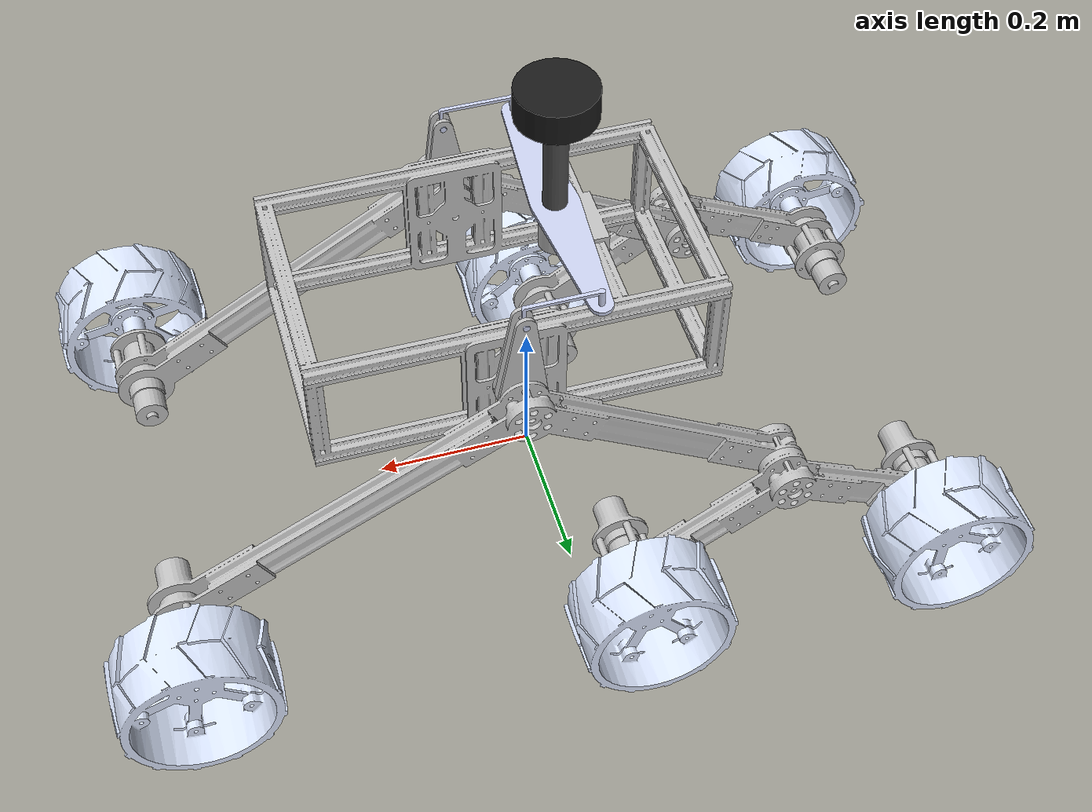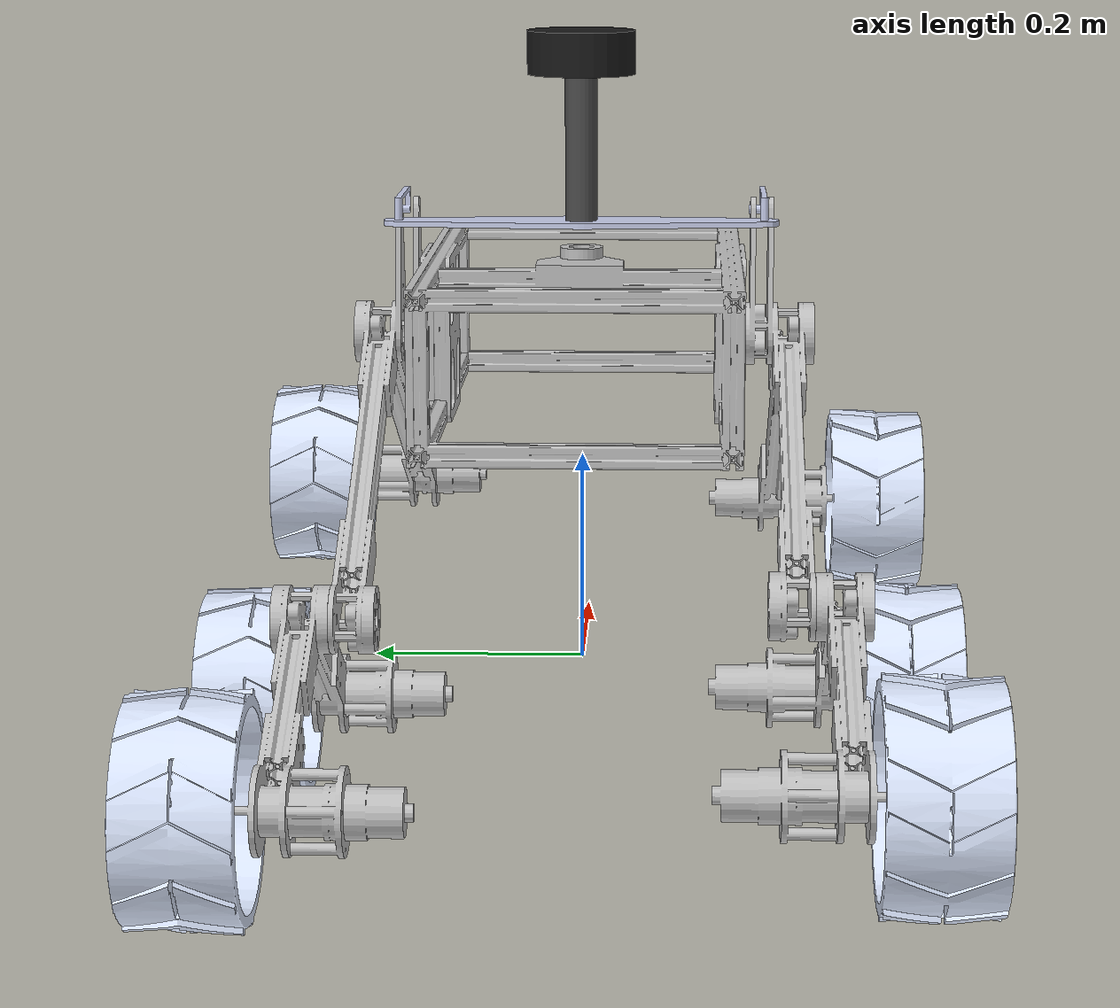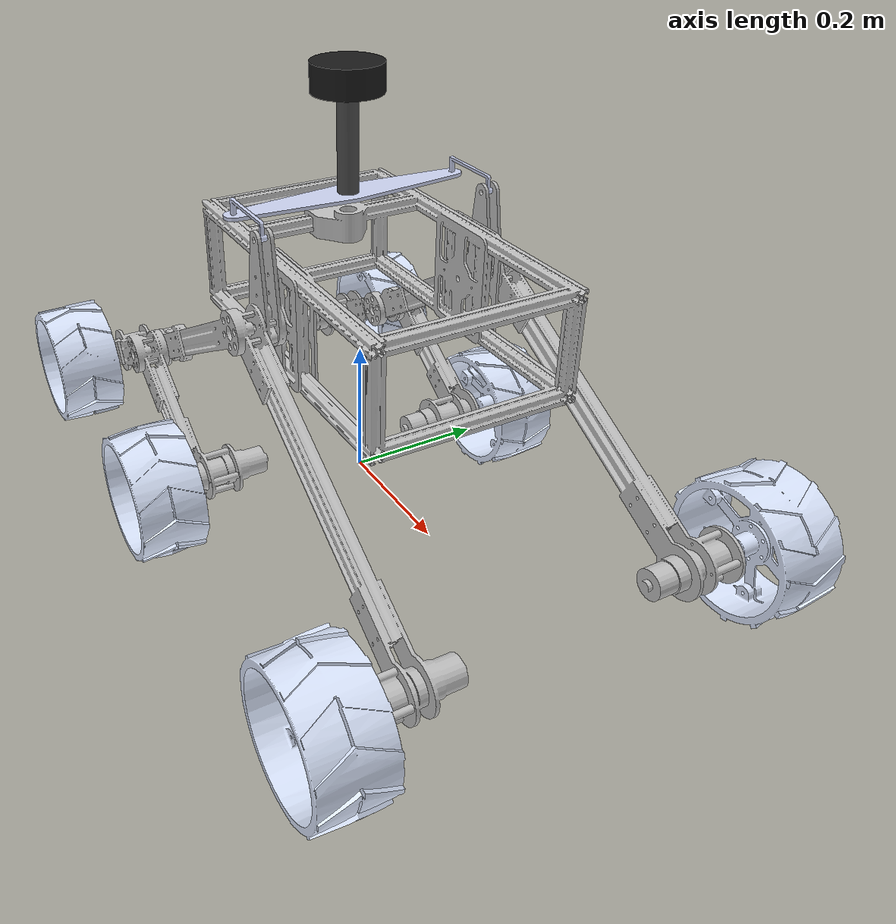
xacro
<?xml version="1.0"?>
<robot
  name="rover_description"
  xmlns:xacro="http://www.ros.org/wiki/xacro">
  <xacro:include filename="$(find rover_description)/urdf/sensors.urdf.xacro"/>

  <!-- Standard ROS base_link root frame (REP-103: X forward, Y left, Z up) -->
  <link name="base_link" />

  <joint name="base_link_to_chassis_joint" type="fixed">
    <parent link="base_link" />
    <child link="chassis" />
    <origin xyz="-0.9725 0.8488 -1.09" rpy="-1.570796 0 -1.570796" />
  </joint>

  <link
    name="chassis">
    <inertial>
      <origin
        xyz="0.848856756174826 -1.40233565202935 1.01936314005979"
        rpy="0 0 0" />
      <mass
        value="3.0136708748555" />
      <inertia
        ixx="0.0238693285858421"
        ixy="-2.16162888765699E-10"
        ixz="2.16817247419927E-10"
        iyy="0.0215591824716579"
        iyz="-3.67475478322892E-06"
        izz="0.00486414098649309" />
    </inertial>
    <visual>
      <origin
        xyz="0 0 0"
        rpy="0 0 0" />
      <geometry>
        <mesh
          filename="package://rover_description/meshes/chassis.STL" />
      </geometry>
      <material
        name="silver">
        <color
          rgba="0.752941176470588 0.752941176470588 0.752941176470588 1" />
      </material>
    </visual>
    <collision>
      <origin
        xyz="0 0 0"
        rpy="0 0 0" />
      <geometry>
        <mesh
          filename="package://rover_description/meshes/chassis.STL" />
      </geometry>
    </collision>
  </link>
  <link
    name="rocker_left">
    <inertial>
      <origin
        xyz="-0.0708930506950052 -0.0788266039661663 -0.0854282503053444"
        rpy="0 0 0" />
      <mass
        value="1.52406781035048" />
      <inertia
        ixx="0.00276301924130709"
        ixy="-0.00103485933820542"
        ixz="3.88201944670203E-08"
        iyy="0.00511203836891508"
        iyz="-2.72150249215459E-08"
        izz="0.00741443107639246" />
    </inertial>
    <visual>
      <origin
        xyz="0 0 0"
        rpy="0 0 0" />
      <geometry>
        <mesh
          filename="package://rover_description/meshes/rocker_left.STL" />
      </geometry>
      <material
        name="silver">
        <color
          rgba="0.752941176470588 0.752941176470588 0.752941176470588 1" />
      </material>
    </visual>
    <collision>
      <origin
        xyz="0 0 0"
        rpy="0 0 0" />
      <geometry>
        <mesh
          filename="package://rover_description/meshes/rocker_left.STL" />
      </geometry>
    </collision>
  </link>
  <joint
    name="rocker_to_chassis_left_joint"
    type="revolute">
    <origin
      xyz="0.57581 -1.3985 1.0289"
      rpy="-1.5708 1.5427 1.5708" />
    <parent
      link="chassis" />
    <child
      link="rocker_left" />
    <axis
      xyz="0 0 1" />
    <limit lower="-0.4" upper="0.4" effort="100.0" velocity="1.0" />
    <dynamics damping="8.0" friction="0.5" />
  </joint>
  <link
    name="front_wheel_left">
    <inertial>
      <origin
        xyz="1.74505466299379E-07 -2.98567551570983E-07 -0.0357217157995743"
        rpy="0 0 0" />
      <mass
        value="0.698737792866946" />
      <inertia
        ixx="0.0027783274087875"
        ixy="4.08012165720173E-13"
        ixz="2.071363176278E-18"
        iyy="0.00277832741148056"
        iyz="2.91236690295353E-18"
        izz="0.0052809365873556" />
    </inertial>
    <visual>
      <origin
        xyz="0 0 0"
        rpy="0 0 0" />
      <geometry>
        <mesh
          filename="package://rover_description/meshes/front_wheel_left.STL" />
      </geometry>
      <material
        name="light_blue">
        <color
          rgba="0.866666666666667 0.909803921568627 1 1" />
      </material>
    </visual>
    <collision>
      <origin
        xyz="0 0 0"
        rpy="0 0 0" />
      <geometry>
        <mesh
          filename="package://rover_description/meshes/front_wheel_left.STL" />
      </geometry>
    </collision>
  </link>
  <joint
    name="front_wheel_to_rocker_left_joint"
    type="continuous">
    <origin
      xyz="-0.42714 -0.24661 0"
      rpy="3.1416 0 -1.7013" />
    <parent
      link="rocker_left" />
    <child
      link="front_wheel_left" />
    <axis
      xyz="0 0 1" />
  </joint>
  <link
    name="bogie_left">
    <inertial>
      <origin
        xyz="0.036618282465839 -0.0737630682136117 -0.0541227088672851"
        rpy="0 0 0" />
      <mass
        value="0.879768518113954" />
      <inertia
        ixx="0.000807077266052394"
        ixy="-0.000166971431752085"
        ixz="2.93085100014238E-08"
        iyy="0.00105420731413558"
        iyz="-6.37598853947825E-08"
        izz="0.00101921636974668" />
    </inertial>
    <visual>
      <origin
        xyz="0 0 0"
        rpy="0 0 0" />
      <geometry>
        <mesh
          filename="package://rover_description/meshes/bogie_left.STL" />
      </geometry>
      <material
        name="silver">
        <color
          rgba="0.752941176470588 0.752941176470588 0.752941176470588 1" />
      </material>
    </visual>
    <collision>
      <origin
        xyz="0 0 0"
        rpy="0 0 0" />
      <geometry>
        <mesh
          filename="package://rover_description/meshes/bogie_left.STL" />
      </geometry>
    </collision>
  </link>
  <joint
    name="bogie_to_rocker_left_joint"
    type="revolute">
    <origin
      xyz="0.33299 -0.19225 -0.005"
      rpy="0 0 -0.39451" />
    <parent
      link="rocker_left" />
    <child
      link="bogie_left" />
    <axis
      xyz="0 0 1" />
    <limit lower="-0.4" upper="0.4" effort="100.0" velocity="1.0" />
    <dynamics damping="5.0" friction="0.5" />
  </joint>
  <link
    name="middle_wheel_left">
    <inertial>
      <origin
        xyz="1.74504439676149E-07 -2.9856884609103E-07 -0.0357217157995328"
        rpy="0 0 0" />
      <mass
        value="0.698737792866942" />
      <inertia
        ixx="0.00277832740878752"
        ixy="4.08022357220594E-13"
        ixz="-4.39944130320653E-18"
        iyy="0.00277832741148053"
        iyz="-2.42819306211826E-19"
        izz="0.00528093658735559" />
    </inertial>
    <visual>
      <origin
        xyz="0 0 0"
        rpy="0 0 0" />
      <geometry>
        <mesh
          filename="package://rover_description/meshes/middle_wheel_left.STL" />
      </geometry>
      <material
        name="light_blue">
        <color
          rgba="0.866666666666667 0.909803921568627 1 1" />
      </material>
    </visual>
    <collision>
      <origin
        xyz="0 0 0"
        rpy="0 0 0" />
      <geometry>
        <mesh
          filename="package://rover_description/meshes/middle_wheel_left.STL" />
      </geometry>
    </collision>
  </link>
  <joint
    name="middle_wheel_left_joint"
    type="continuous">
    <origin
      xyz="-0.12787 -0.19503 0"
      rpy="3.1416 0 0.59613" />
    <parent
      link="bogie_left" />
    <child
      link="middle_wheel_left" />
    <axis
      xyz="0 0 1" />
  </joint>
  <link
    name="back_wheel_left">
    <inertial>
      <origin
        xyz="1.74504817262999E-07 -2.98566775858156E-07 -0.0357217157995454"
        rpy="0 0 0" />
      <mass
        value="0.698737792866945" />
      <inertia
        ixx="0.00277832740878753"
        ixy="4.08019409545938E-13"
        ixz="9.89950354579104E-18"
        iyy="0.00277832741148054"
        iyz="-1.36205636861602E-17"
        izz="0.0052809365873556" />
    </inertial>
    <visual>
      <origin
        xyz="0 0 0"
        rpy="0 0 0" />
      <geometry>
        <mesh
          filename="package://rover_description/meshes/back_wheel_left.STL" />
      </geometry>
      <material
        name="light_blue">
        <color
          rgba="0.866666666666667 0.909803921568627 1 1" />
      </material>
    </visual>
    <collision>
      <origin
        xyz="0 0 0"
        rpy="0 0 0" />
      <geometry>
        <mesh
          filename="package://rover_description/meshes/back_wheel_left.STL" />
      </geometry>
    </collision>
  </link>
  <joint
    name="back_wheel_left_joint"
    type="continuous">
    <origin
      xyz="0.23084 -0.013114 0"
      rpy="3.1416 0 1.9721" />
    <parent
      link="bogie_left" />
    <child
      link="back_wheel_left" />
    <axis
      xyz="0 0 1" />
  </joint>
  <link
    name="tht_heim_left">
    <inertial>
      <origin
        xyz="0.0465922874727698 0.000928307879032975 -0.0124000683242971"
        rpy="0 0 0" />
      <mass
        value="0.00406105697199825" />
      <inertia
        ixx="3.43344399741734E-07"
        ixy="1.75648785646082E-07"
        ixz="2.42986640396015E-07"
        iyy="6.17241101877793E-06"
        iyz="-4.67471562619483E-08"
        izz="5.9066564906369E-06" />
    </inertial>
    <visual>
      <origin
        xyz="0 0 0"
        rpy="0 0 0" />
      <geometry>
        <mesh
          filename="package://rover_description/meshes/tht_heim_left.STL" />
      </geometry>
      <material
        name="heim_blue">
        <color
          rgba="0.792156862745098 0.819607843137255 0.933333333333333 1" />
      </material>
    </visual>
    <collision>
      <origin
        xyz="0 0 0"
        rpy="0 0 0" />
      <geometry>
        <mesh
          filename="package://rover_description/meshes/tht_heim_left.STL" />
      </geometry>
    </collision>
  </link>
  <joint
    name="tht_heim_joint_left_joint"
    type="fixed">
    <origin
      xyz="0 0.12 -0.10303"
      rpy="1.5708 0 0.028096" />
    <parent
      link="rocker_left" />
    <child
      link="tht_heim_left" />
    <axis
      xyz="0 0 0" />
  </joint>
  <link
    name="rocker_right">
    <inertial>
      <origin
        xyz="0.0708984627265465 -0.078825261866198 0.0615717497135109"
        rpy="0 0 0" />
      <mass
        value="1.52406781159065" />
      <inertia
        ixx="0.00276301919143687"
        ixy="0.00103485937796184"
        ixz="5.40923546343578E-08"
        iyy="0.00511203842086244"
        iyz="-4.55690930823379E-09"
        izz="0.00741443107846789" />
    </inertial>
    <visual>
      <origin
        xyz="0 0 0"
        rpy="0 0 0" />
      <geometry>
        <mesh
          filename="package://rover_description/meshes/rocker_right.STL" />
      </geometry>
      <material
        name="silver">
        <color
          rgba="0.752941176470588 0.752941176470588 0.752941176470588 1" />
      </material>
    </visual>
    <collision>
      <origin
        xyz="0 0 0"
        rpy="0 0 0" />
      <geometry>
        <mesh
          filename="package://rover_description/meshes/rocker_right.STL" />
      </geometry>
    </collision>
  </link>
  <joint
    name="rocker_to_chassis_right_joint"
    type="revolute">
    <origin
      xyz="0.97481 -1.3985 1.0291"
      rpy="1.5708 -1.5447 1.5708" />
    <parent
      link="chassis" />
    <child
      link="rocker_right" />
    <axis
      xyz="0 0 1" />
    <limit lower="-0.4" upper="0.4" effort="100.0" velocity="1.0" />
    <dynamics damping="8.0" friction="0.5" />
  </joint>
  <link
    name="front_wheel_right">
    <inertial>
      <origin
        xyz="1.74507242878263E-07 -2.98563820333442E-07 -0.0490967157995688"
        rpy="0 0 0" />
      <mass
        value="0.698737792866936" />
      <inertia
        ixx="0.00277832740878748"
        ixy="4.08013195712237E-13"
        ixz="4.07583656199967E-18"
        iyy="0.00277832741148053"
        iyz="1.47362492382184E-18"
        izz="0.00528093658735555" />
    </inertial>
    <visual>
      <origin
        xyz="0 0 0"
        rpy="0 0 0" />
      <geometry>
        <mesh
          filename="package://rover_description/meshes/front_wheel_right.STL" />
      </geometry>
      <material
        name="light_blue">
        <color
          rgba="0.866666666666667 0.909803921568627 1 1" />
      </material>
    </visual>
    <collision>
      <origin
        xyz="0 0 0"
        rpy="0 0 0" />
      <geometry>
        <mesh
          filename="package://rover_description/meshes/front_wheel_right.STL" />
      </geometry>
    </collision>
  </link>
  <joint
    name="front_wheel_right_joint"
    type="continuous">
    <origin
      xyz="0.42714 -0.24661 0.13363"
      rpy="3.1416 0 -1.1957" />
    <parent
      link="rocker_right" />
    <child
      link="front_wheel_right" />
    <axis
      xyz="0 0 1" />
  </joint>
  <link
    name="bogie_right">
    <inertial>
      <origin
        xyz="-0.0208406920452977 -0.0796690156847922 0.0878772910687851"
        rpy="0 0 0" />
      <mass
        value="0.879768515580983" />
      <inertia
        ixx="0.00074833187091685"
        ixy="9.95513707471112E-05"
        ixz="4.49524575134292E-09"
        iyy="0.00111295270342727"
        iyz="-6.66105790561298E-08"
        izz="0.00101921636389251" />
    </inertial>
    <visual>
      <origin
        xyz="0 0 0"
        rpy="0 0 0" />
      <geometry>
        <mesh
          filename="package://rover_description/meshes/bogie_right.STL" />
      </geometry>
      <material
        name="silver">
        <color
          rgba="0.752941176470588 0.752941176470588 0.752941176470588 1" />
      </material>
    </visual>
    <collision>
      <origin
        xyz="0 0 0"
        rpy="0 0 0" />
      <geometry>
        <mesh
          filename="package://rover_description/meshes/bogie_right.STL" />
      </geometry>
    </collision>
  </link>
  <joint
    name="rocker_to_bogie_right_joint"
    type="revolute">
    <origin
      xyz="-0.33299 -0.19225 0"
      rpy="0 0 0.20557" />
    <parent
      link="rocker_right" />
    <child
      link="bogie_right" />
    <axis
      xyz="0 0 1" />
    <limit lower="-0.4" upper="0.4" effort="100.0" velocity="1.0" />
    <dynamics damping="5.0" friction="0.5" />
  </joint>
  <link
    name="middle_wheel_right">
    <inertial>
      <origin
        xyz="1.74504856009783E-07 -2.98566675382972E-07 -0.0490967157995981"
        rpy="0 0 0" />
      <mass
        value="0.698737792866939" />
      <inertia
        ixx="0.0027783274087875"
        ixy="4.07993842703458E-13"
        ixz="-2.71039921676526E-19"
        iyy="0.00277832741148053"
        iyz="-4.11079983141355E-18"
        izz="0.00528093658735557" />
    </inertial>
    <visual>
      <origin
        xyz="0 0 0"
        rpy="0 0 0" />
      <geometry>
        <mesh
          filename="package://rover_description/meshes/middle_wheel_right.STL" />
      </geometry>
      <material
        name="light_blue">
        <color
          rgba="0.866666666666667 0.909803921568627 1 1" />
      </material>
    </visual>
    <collision>
      <origin
        xyz="0 0 0"
        rpy="0 0 0" />
      <geometry>
        <mesh
          filename="package://rover_description/meshes/middle_wheel_right.STL" />
      </geometry>
    </collision>
  </link>
  <joint
    name="middle_wheel_right_joint"
    type="continuous">
    <origin
      xyz="0.16543 -0.16154 0.12862"
      rpy="3.1416 0 -0.85226" />
    <parent
      link="bogie_right" />
    <child
      link="middle_wheel_right" />
    <axis
      xyz="0 0 1" />
  </joint>
  <link
    name="back_wheel_right">
    <inertial>
      <origin
        xyz="1.74504856786939E-07 -2.98566676049106E-07 -0.0490967157995694"
        rpy="0 0 0" />
      <mass
        value="0.69873779286694" />
      <inertia
        ixx="0.00277832740878749"
        ixy="4.08009780475393E-13"
        ixz="4.80433104898425E-19"
        iyy="0.00277832741148054"
        iyz="2.13140564255521E-18"
        izz="0.00528093658735557" />
    </inertial>
    <visual>
      <origin
        xyz="0 0 0"
        rpy="0 0 0" />
      <geometry>
        <mesh
          filename="package://rover_description/meshes/back_wheel_right.STL" />
      </geometry>
      <material
        name="light_blue">
        <color
          rgba="0.866666666666667 0.909803921568627 1 1" />
      </material>
    </visual>
    <collision>
      <origin
        xyz="0 0 0"
        rpy="0 0 0" />
      <geometry>
        <mesh
          filename="package://rover_description/meshes/back_wheel_right.STL" />
      </geometry>
    </collision>
  </link>
  <joint
    name="back_wheel_right_joint"
    type="continuous">
    <origin
      xyz="-0.22453 -0.063035 0.12862"
      rpy="3.1416 0 -2.3745" />
    <parent
      link="bogie_right" />
    <child
      link="back_wheel_right" />
    <axis
      xyz="0 0 1" />
  </joint>
  <link
    name="tht_heim_right">
    <inertial>
      <origin
        xyz="0.0465922874727696 0.000928307879032975 -0.0124000683242973"
        rpy="0 0 0" />
      <mass
        value="0.00406105697199823" />
      <inertia
        ixx="3.43344399741732E-07"
        ixy="1.75648785646076E-07"
        ixz="2.42986640396017E-07"
        iyy="6.17241101877791E-06"
        iyz="-4.67471562619479E-08"
        izz="5.90665649063688E-06" />
    </inertial>
    <visual>
      <origin
        xyz="0 0 0"
        rpy="0 0 0" />
      <geometry>
        <mesh
          filename="package://rover_description/meshes/tht_heim_right.STL" />
      </geometry>
      <material
        name="heim_blue">
        <color
          rgba="0.792156862745098 0.819607843137255 0.933333333333333 1" />
      </material>
    </visual>
    <collision>
      <origin
        xyz="0 0 0"
        rpy="0 0 0" />
      <geometry>
        <mesh
          filename="package://rover_description/meshes/tht_heim_right.STL" />
      </geometry>
    </collision>
  </link>
  <joint
    name="heim_joint_right_joint"
    type="fixed">
    <origin
      xyz="0 0.12 0.043967"
      rpy="-1.5708 0 -3.1155" />
    <parent
      link="rocker_right" />
    <child
      link="tht_heim_right" />
    <axis
      xyz="0 0 0" />
  </joint>
  <link
    name="differential_bar">
    <inertial>
      <origin
        xyz="-1.22124532708767E-15 -0.00250000000000017 0"
        rpy="0 0 0" />
      <mass
        value="0.0761368489731702" />
      <inertia
        ixx="1.411307889572E-05"
        ixy="1.72538644959461E-19"
        ixz="2.57249200037051E-18"
        iyy="0.000686937839692156"
        iyz="1.78176910116479E-22"
        izz="0.000673141997667158" />
    </inertial>
    <visual>
      <origin
        xyz="0 0 0"
        rpy="0 0 0" />
      <geometry>
        <mesh
          filename="package://rover_description/meshes/differential_bar.STL" />
      </geometry>
      <material
        name="heim_blue">
        <color
          rgba="0.792156862745098 0.819607843137255 0.933333333333333 1" />
      </material>
    </visual>
    <collision>
      <origin
        xyz="0 0 0"
        rpy="0 0 0" />
      <geometry>
        <mesh
          filename="package://rover_description/meshes/differential_bar.STL" />
      </geometry>
    </collision>
  </link>
  <joint
    name="differential_bar_to_chassis_joint"
    type="fixed">
    <origin
      xyz="0.84881 -1.5145 0.9383"
      rpy="0 -0.019815 0" />
    <parent
      link="chassis" />
    <child
      link="differential_bar" />
  </joint>
  <link name="lidar_link">
    <inertial>
      <origin xyz="0 0 0" rpy="0 0 0"/>
      <mass value="0.1"/>
      <inertia ixx="0.0000658" ixy="0" ixz="0" iyy="0.0000658" iyz="0" izz="0.000125" />
    </inertial>
    <!-- Sensor head visual -->
    <visual>
      <origin xyz="0 0 0" rpy="0 0 0"/>
      <geometry>
        <cylinder radius="0.05" length="0.04"/>
      </geometry>
      <material name="black">
        <color rgba="0.1 0.1 0.1 1"/>
      </material>
    </visual>
    <!-- Mount post/riser to differential bar -->
    <visual name="lidar_mast">
      <origin xyz="0 0 -0.08" rpy="0 0 0"/>
      <geometry>
        <cylinder radius="0.015" length="0.16"/>
      </geometry>
      <material name="dark_grey">
        <color rgba="0.3 0.3 0.3 1"/>
      </material>
    </visual>
    <collision>
      <origin xyz="0 0 0" rpy="0 0 0"/>
      <geometry>
        <cylinder radius="0.05" length="0.04"/>
      </geometry>
    </collision>
  </link>

  <joint
    name="lidar_joint" type="fixed">
    <origin xyz="0 -0.16 0" rpy="1.570796 -1.550981 0"/>
    <parent link="differential_bar"/>
    <child link="lidar_link"/>
  </joint>

  <ros2_control name="GazeboSystem" type="system">
    <hardware>

      <plugin>gz_ros2_control/GazeboSimSystem</plugin>
    </hardware>

    <!-- ACTIVE JOINTS (WHEELS) -->
    <!-- Front Left -->
    <joint name="front_wheel_to_rocker_left_joint">
      <command_interface name="velocity">
        <param name="min">-10</param>
        <param name="max">10</param>
      </command_interface>
      <state_interface name="position" />
      <state_interface name="velocity" />
    </joint>

    <!-- Middle Left -->
    <joint name="middle_wheel_left_joint">
      <command_interface name="velocity">
        <param name="min">-10</param>
        <param name="max">10</param>
      </command_interface>
      <state_interface name="position" />
      <state_interface name="velocity" />
    </joint>

    <!-- Back Left -->
    <joint name="back_wheel_left_joint">
      <command_interface name="velocity">
        <param name="min">-10</param>
        <param name="max">10</param>
      </command_interface>
      <state_interface name="position" />
      <state_interface name="velocity" />
    </joint>

    <!-- Front Right -->
    <joint name="front_wheel_right_joint">
      <command_interface name="velocity">
        <param name="min">-10</param>
        <param name="max">10</param>
      </command_interface>
      <state_interface name="position" />
      <state_interface name="velocity" />
    </joint>

    <!-- Middle Right -->
    <joint name="middle_wheel_right_joint">
      <command_interface name="velocity">
        <param name="min">-10</param>
        <param name="max">10</param>
      </command_interface>
      <state_interface name="position" />
      <state_interface name="velocity" />
    </joint>

    <!-- Back Right -->
    <joint name="back_wheel_right_joint">
      <command_interface name="velocity">
        <param name="min">-10</param>
        <param name="max">10</param>
      </command_interface>
      <state_interface name="position" />
      <state_interface name="velocity" />
    </joint>

    <!-- PASSIVE JOINTS (SUSPENSION) -->

    <joint name="rocker_to_chassis_left_joint">
      <state_interface name="position" />
    </joint>
    <joint name="bogie_to_rocker_left_joint">
      <state_interface name="position" />
    </joint>
    <joint name="rocker_to_chassis_right_joint">
      <state_interface name="position" />
    </joint>
    <joint name="rocker_to_bogie_right_joint">
      <state_interface name="position" />
    </joint>
  </ros2_control>

  <!-- WHEEL FRICTION FOR GAZEBO -->
  <gazebo reference="front_wheel_left"><mu1>0.5</mu1><mu2>0.3</mu2><kp>1000000.0</kp><kd>10.0</kd><minDepth>0.001</minDepth></gazebo>
  <gazebo reference="middle_wheel_left"><mu1>0.5</mu1><mu2>0.3</mu2><kp>1000000.0</kp><kd>10.0</kd><minDepth>0.001</minDepth></gazebo>
  <gazebo reference="back_wheel_left"><mu1>0.5</mu1><mu2>0.3</mu2><kp>1000000.0</kp><kd>10.0</kd><minDepth>0.001</minDepth></gazebo>
  <gazebo reference="front_wheel_right"><mu1>0.5</mu1><mu2>0.3</mu2><kp>1000000.0</kp><kd>10.0</kd><minDepth>0.001</minDepth></gazebo>
  <gazebo reference="middle_wheel_right"><mu1>0.5</mu1><mu2>0.3</mu2><kp>1000000.0</kp><kd>10.0</kd><minDepth>0.001</minDepth></gazebo>
  <gazebo reference="back_wheel_right"><mu1>0.5</mu1><mu2>0.3</mu2><kp>1000000.0</kp><kd>10.0</kd><minDepth>0.001</minDepth></gazebo>

  <!-- ROCKER SUSPENSION DYNAMICS (DIFFERENTIAL STABILIZATION) -->
  <gazebo reference="rocker_to_chassis_left_joint">
    <implicitSpringDamper>true</implicitSpringDamper>
    <springStiffness>60.0</springStiffness>
    <springReference>0.1096</springReference>
  </gazebo>
  <gazebo reference="rocker_to_chassis_right_joint">
    <implicitSpringDamper>true</implicitSpringDamper>
    <springStiffness>60.0</springStiffness>
    <springReference>-0.0555</springReference>
  </gazebo>
  <!-- Bogies are passive un-sprung pivots strictly per rocker-bogie mechanism -->

  <gazebo>
    <plugin filename="gz_ros2_control-system" name="gz_ros2_control::GazeboSimROS2ControlPlugin">
      <parameters>$(find rover_description)/config/controllers.yaml</parameters>
    </plugin>
  </gazebo>

</robot>
